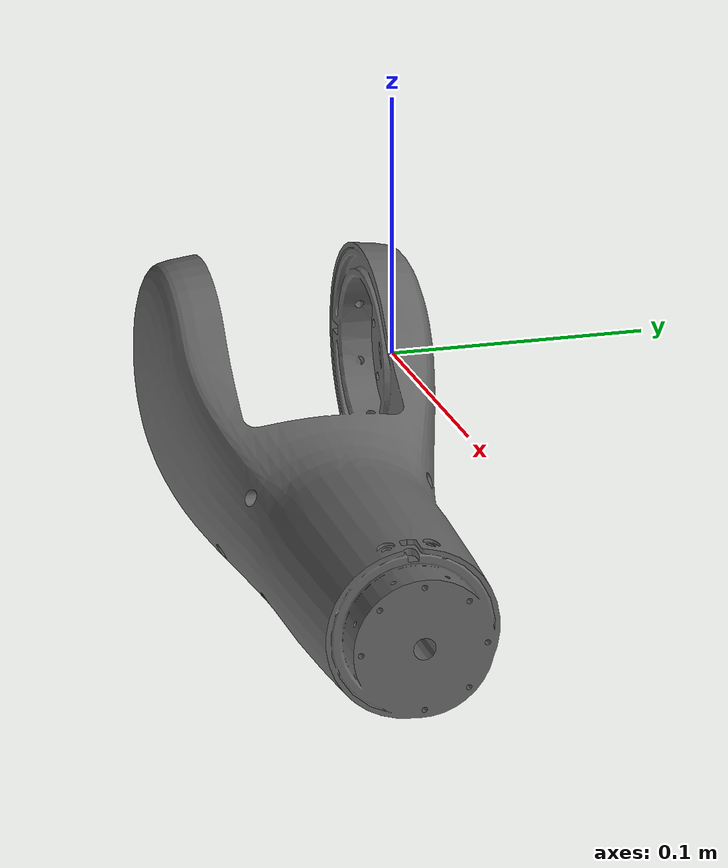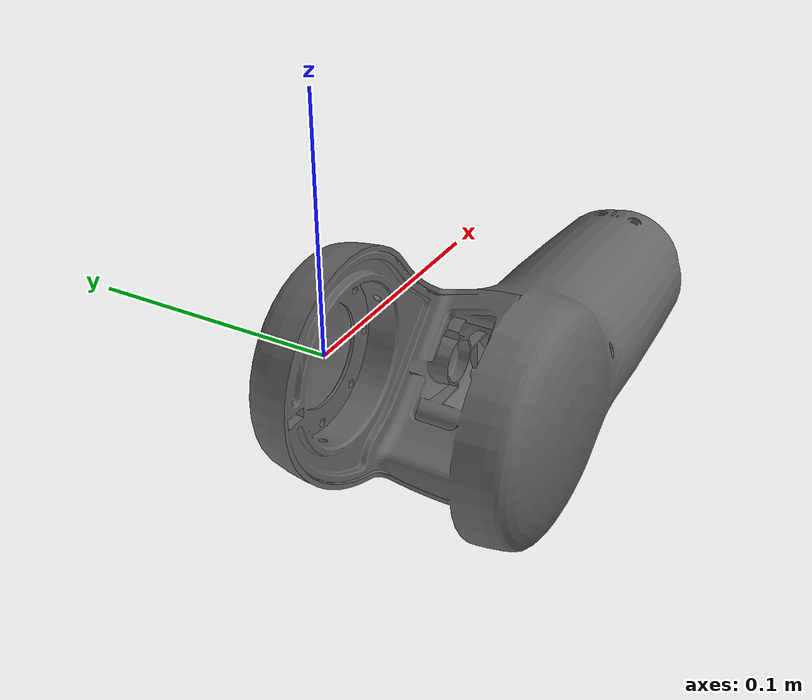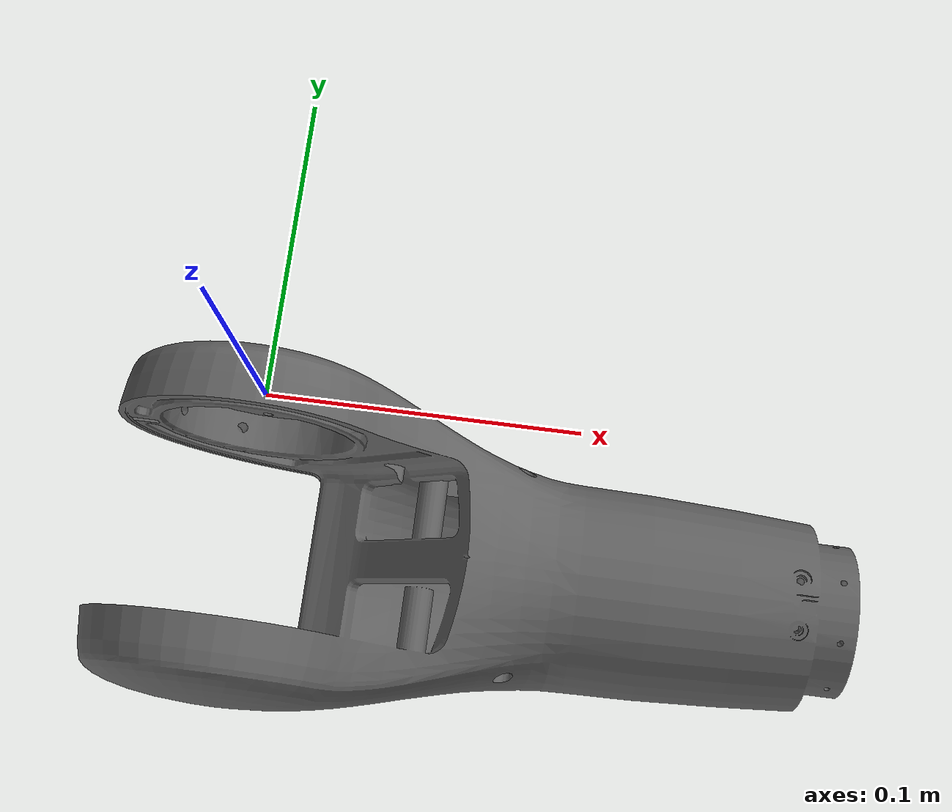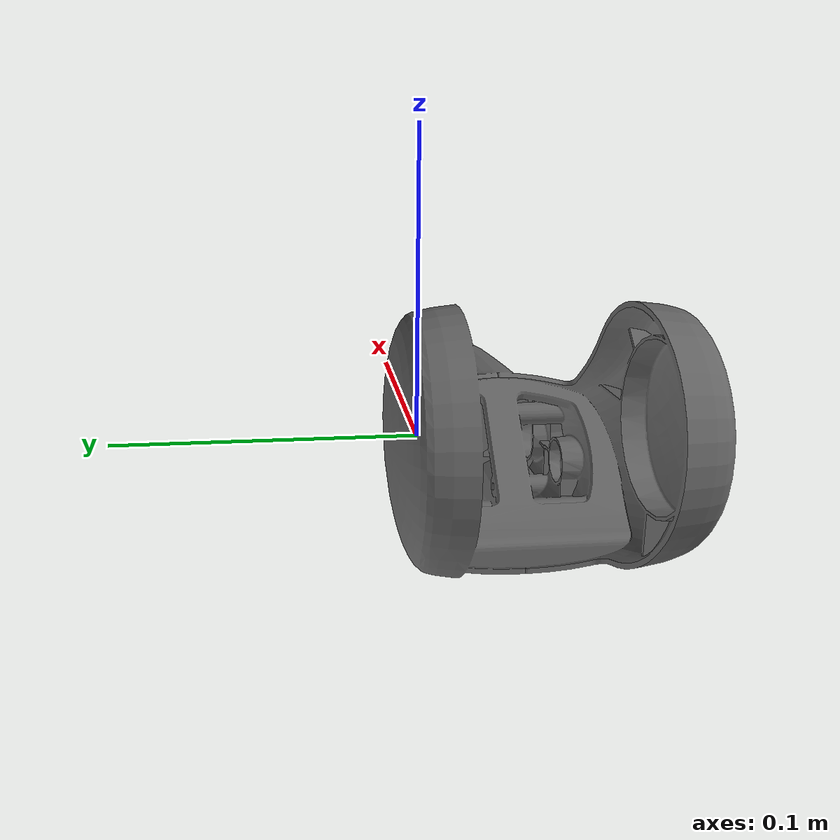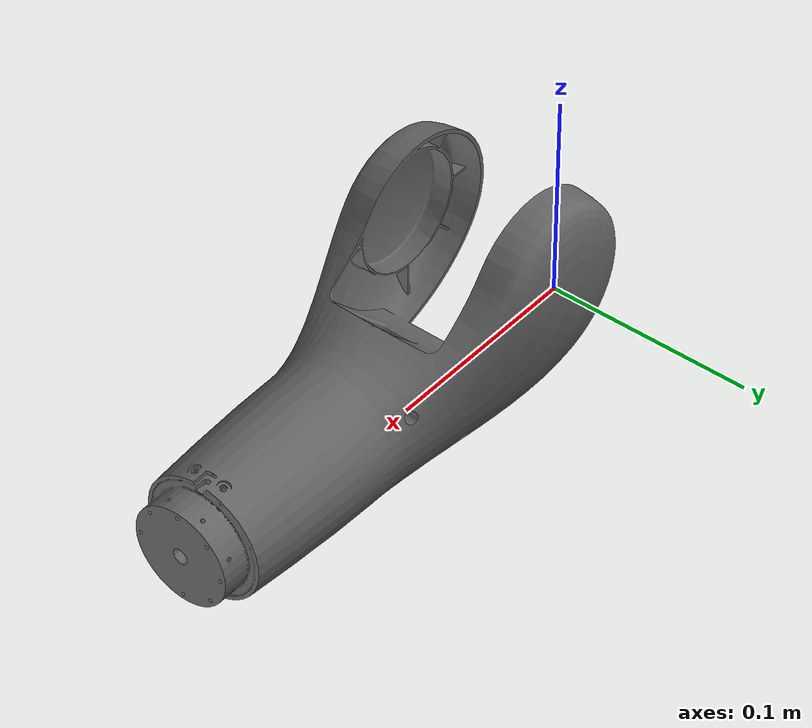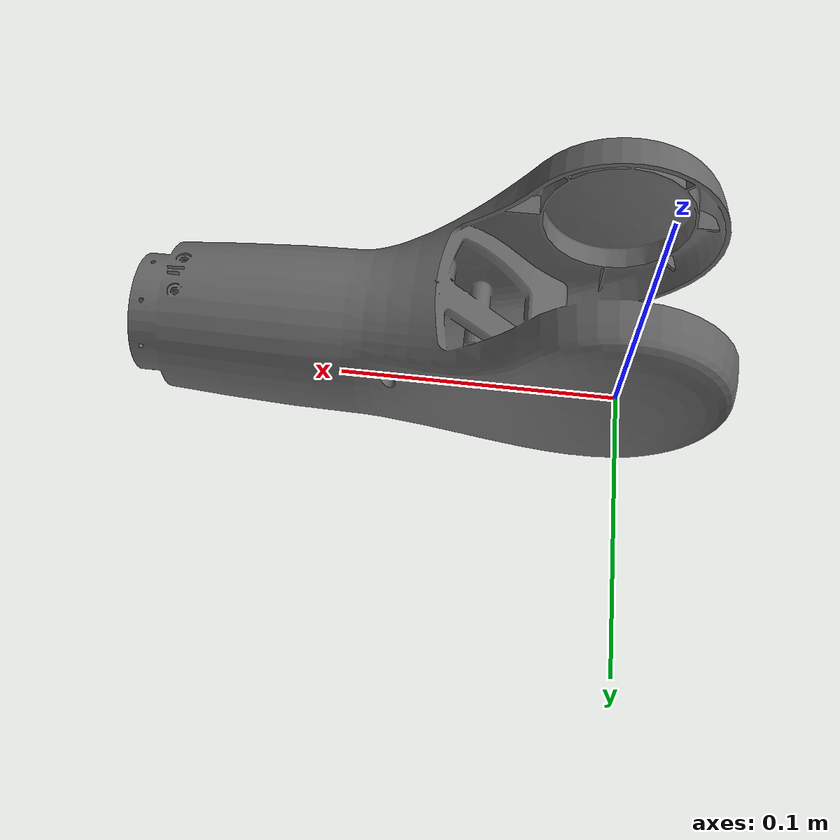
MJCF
<mujoco model="arm_l4">
  <default>
    <default class="visual">
      <geom group="2" type="mesh" contype="0" conaffinity="0"/>
    </default>
    <default class="collision">
      <geom group="3" type="mesh"/>
    </default>
  </default>
  <asset>
    <material name="material_0" specular="0.4000000000000001" shininess="0.001" rgba="0.40000000 0.40000000 0.40000000 1.0"/>
    <mesh file="arm_l4.obj"/>
  </asset>
  <worldbody>
    <body name="arm_l4">
      <geom material="material_0" mesh="arm_l4" class="visual"/>
    </body>
  </worldbody>
</mujoco>
